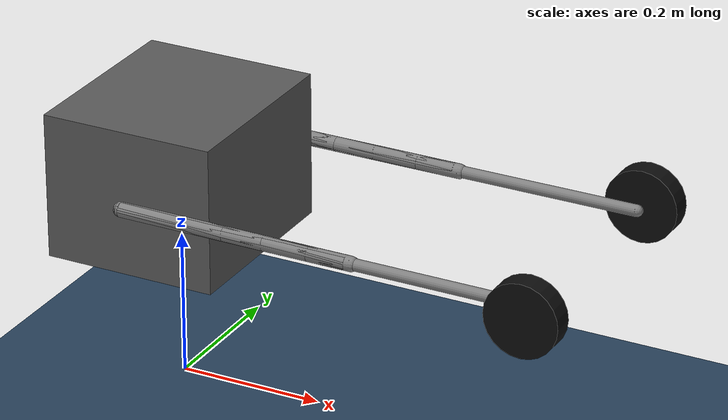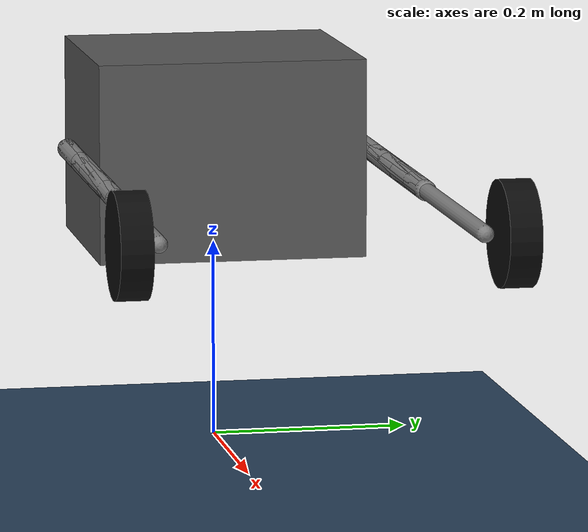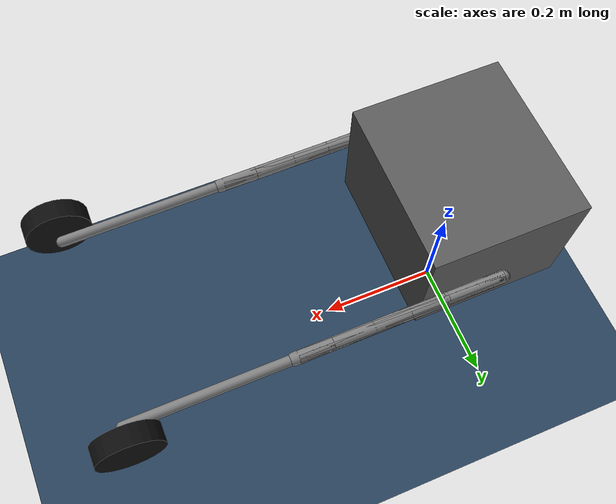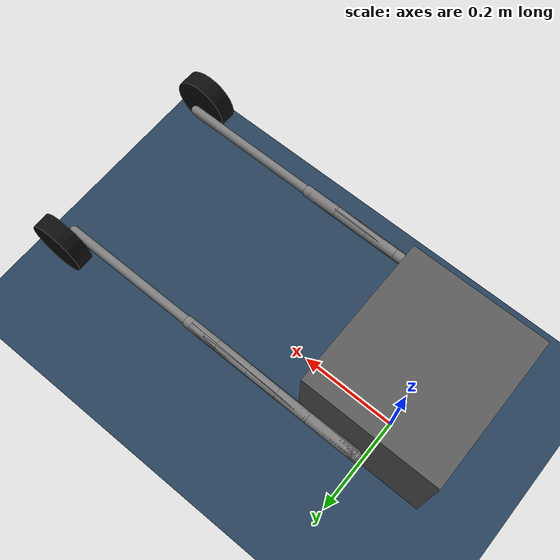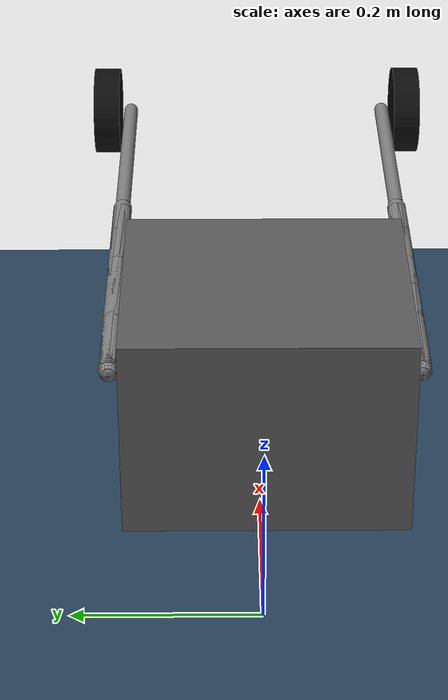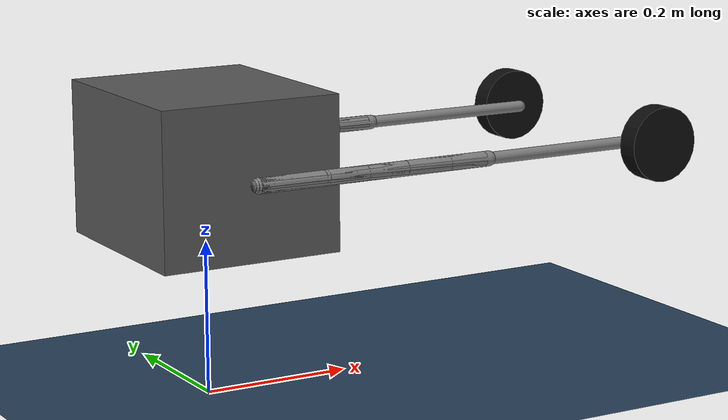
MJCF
<mujoco model="closed_chain_vertical_free">

    <compiler angle="radian" coordinate="local"/>
    <option timestep="0.001" gravity="0 0 -9.81" iterations="50"/>

    <visual>
        <map force="0.1" zfar="30"/>
        <rgba haze="0.15 0.25 0.35 1"/>
        <global offwidth="2560" offheight="1440" elevation="-20" azimuth="120"/>
    </visual>

    <asset>
        <texture type="skybox" builtin="gradient" rgb1=".3 .5 .7" rgb2="0 0 0" width="32" height="512"/>
        <texture name="grid" type="2d" builtin="checker" width="512" height="512" rgb1=".1 .2 .3" rgb2=".2 .3 .4"/>
        <material name="grid" texture="grid" texrepeat="1 1" texuniform="true" reflectance=".2"/>
    </asset>

    <size njmax="1000" nconmax="200"/>

    <!-- Link density is scaled so each complete five-bar leg is 0.47 kg. -->
    <default>
        <geom density="1488.66083872"/>
    </default>

    <worldbody>
        <geom name="floor" size="0 0 .05" type="plane" material="grid" condim="3"/>
        <!-- Debug stand: top surface z=0.20 supports the bottom of mount_plate. -->
        <light name="spotlight" mode="targetbody" target="A" diffuse=".8 .8 .8" specular="0.3 0.3 0.3" pos="0 -6 4" cutoff="30"/>
        <light name="top" pos="0 0 2" mode="trackcom"/>

        <!-- 平板：连接两个固定点 -->
        <body name="plate" pos="0 0 0.30">
            <freejoint name="root_free"/>
            <site name="imu_site" pos="0 0 0" size="0.006" rgba="0.1 0.8 0.2 1"/>
            <geom name="mount_plate" type="box" size="0.12 0.135 0.10" pos="0 0 0"
                  density="189.814814815" rgba="0.35 0.35 0.35 1"/>

            <!-- A 点固定在平板一侧，沿 Y 偏移避免干涉 -->
            <body name="A" pos="0 0.15 0">
            <camera name="main" pos="-0.6 0 0.3" xyaxes="0 -1 0 1 0 1" mode="trackcom"/>
            <geom type="sphere" size="0.01"/>
            <body name="motor_B_mass" pos="0 0 0">
                <inertial pos="0 0 0" mass="0.96" diaginertia="0.001 0.001 0.001"/>
            </body>
            <body name="motor_D_mass" pos="0 0 0">
                <inertial pos="0 0 0" mass="0.96" diaginertia="0.001 0.001 0.001"/>
            </body>

            <!-- B branch：绕 Y 轴转，在 XZ 竖直平面内运动 -->
            <body name="B" pos="0 0 0">
                <joint name="q_B" type="hinge" axis="0 1 0" damping="0.2" frictionloss="0.01"/>
                <geom type="capsule" fromto="0 0 0 0.0945 0 0" size="0.01"/>

                <body name="BC" pos="0.0945 0 0">
                    <joint name="q_BC" type="hinge" axis="0 1 0" damping="0.2" frictionloss="0.01"/>
                    <geom type="capsule" fromto="0 0 0 0.1125 0 0" size="0.01"/>

                    <body name="C" pos="0.1125 0 0">
                        <joint name="q_C" type="hinge" axis="0 1 0" damping="0.2" frictionloss="0.01"/>
                        <geom type="capsule" fromto="0 0 0 0.116 0 0" size="0.01"/>
                        <site name="C_site" pos="0.116 0 0"/>
                    </body>
                </body>
            </body>

            <!-- D branch：绕 Y 轴转，在 XZ 竖直平面内运动 -->
            <body name="D" pos="0 0 0">
                <joint name="q_D" type="hinge" axis="0 1 0" damping="0.2" frictionloss="0.01"/>
                <geom type="capsule" fromto="0 0 0 0.090 0 0" size="0.01"/>
                <site name="D_site" pos="0.090 0 0"/>

                <geom type="capsule" fromto="0 0 0 0.210 0 0" size="0.006"/>
                <site name="G_site" pos="0.210 0 0"/>

                <body name="DE" pos="0.090 0 0">
                    <joint name="q_DE" type="hinge" axis="0 1 0" damping="0.2" frictionloss="0.01"/>
                    <geom type="capsule" fromto="0 0 0 0.060 0 0" size="0.01"/>
                    <site name="E_site" pos="0.060 0 0"/>

                    <body name="E" pos="0.060 0 0">
                        <joint name="q_E" type="hinge" axis="0 1 0" damping="0.2" frictionloss="0.01"/>
                        <geom type="capsule" fromto="0 0 0 0.120 0 0" size="0.01"/>
                        <site name="F_site" pos="0.120 0 0"/>

                        <body name="F" pos="0.120 0 0">
                            <joint name="q_F" type="hinge" axis="0 1 0" damping="0.2" frictionloss="0.01"/>
                            <geom type="capsule" fromto="0 0 0 0.060 0 0" size="0.01"/>

                            <body name="G_loop" pos="0.060 0 0">
                                <site name="G_loop_site" pos="0 0 0"/>
                                <geom type="capsule" fromto="0 0 0 0.250 0 0" size="0.008"/>
                                <site name="H_site" pos="0.250 0 0"/>
                                <body name="H_wheel_body" pos="0.250 0.027 0">
                                    <joint name="q_H_wheel" type="hinge" axis="0 1 0"
                                           damping="0.002" frictionloss="0.0001"/>
                                    <inertial pos="0 0 0" mass="0.47"
                                              diaginertia="0.000329 0.0005875 0.000329"/>
                                    <geom name="H_wheel" type="cylinder" fromto="0 -0.015 0 0 0.015 0"
                                          size="0.05" density="0" rgba="0.05 0.05 0.05 1"
                                          condim="6" friction="1.2 0.005 0.0001"/>
                                </body>
                            </body>
                        </body>
                    </body>
                </body>
            </body>

            </body>

            <!-- A2 点固定在平板另一侧，沿 Y 偏移避免干涉 -->
            <body name="A_2" pos="0 -0.15 0">
            <geom type="sphere" size="0.01"/>
            <body name="motor_B_mass_2" pos="0 0 0">
                <inertial pos="0 0 0" mass="0.96" diaginertia="0.001 0.001 0.001"/>
            </body>
            <body name="motor_D_mass_2" pos="0 0 0">
                <inertial pos="0 0 0" mass="0.96" diaginertia="0.001 0.001 0.001"/>
            </body>

            <!-- B branch：绕 Y 轴转，在 XZ 竖直平面内运动 -->
            <body name="B_2" pos="0 0 0">
                <joint name="q_B_2" type="hinge" axis="0 -1 0" damping="0.2" frictionloss="0.01"/>
                <geom type="capsule" fromto="0 0 0 0.0945 0 0" size="0.01"/>

                <body name="BC_2" pos="0.0945 0 0">
                    <joint name="q_BC_2" type="hinge" axis="0 -1 0" damping="0.2" frictionloss="0.01"/>
                    <geom type="capsule" fromto="0 0 0 0.1125 0 0" size="0.01"/>

                    <body name="C_2" pos="0.1125 0 0">
                        <joint name="q_C_2" type="hinge" axis="0 -1 0" damping="0.2" frictionloss="0.01"/>
                        <geom type="capsule" fromto="0 0 0 0.116 0 0" size="0.01"/>
                        <site name="C_site_2" pos="0.116 0 0"/>
                    </body>
                </body>
            </body>

            <!-- D branch：绕 Y 轴转，在 XZ 竖直平面内运动 -->
            <body name="D_2" pos="0 0 0">
                <joint name="q_D_2" type="hinge" axis="0 -1 0" damping="0.2" frictionloss="0.01"/>
                <geom type="capsule" fromto="0 0 0 0.090 0 0" size="0.01"/>
                <site name="D_site_2" pos="0.090 0 0"/>

                <geom type="capsule" fromto="0 0 0 0.210 0 0" size="0.006"/>
                <site name="G_site_2" pos="0.210 0 0"/>

                <body name="DE_2" pos="0.090 0 0">
                    <joint name="q_DE_2" type="hinge" axis="0 -1 0" damping="0.2" frictionloss="0.01"/>
                    <geom type="capsule" fromto="0 0 0 0.060 0 0" size="0.01"/>
                    <site name="E_site_2" pos="0.060 0 0"/>

                    <body name="E_2" pos="0.060 0 0">
                        <joint name="q_E_2" type="hinge" axis="0 -1 0" damping="0.2" frictionloss="0.01"/>
                        <geom type="capsule" fromto="0 0 0 0.120 0 0" size="0.01"/>
                        <site name="F_site_2" pos="0.120 0 0"/>

                        <body name="F_2" pos="0.120 0 0">
                            <joint name="q_F_2" type="hinge" axis="0 -1 0" damping="0.2" frictionloss="0.01"/>
                            <geom type="capsule" fromto="0 0 0 0.060 0 0" size="0.01"/>

                            <body name="G_loop_2" pos="0.060 0 0">
                                <site name="G_loop_site_2" pos="0 0 0"/>
                                <geom type="capsule" fromto="0 0 0 0.250 0 0" size="0.008"/>
                                <site name="H_site_2" pos="0.250 0 0"/>
                                <body name="H_wheel_body_2" pos="0.250 -0.027 0">
                                    <joint name="q_H_wheel_2" type="hinge" axis="0 -1 0"
                                           damping="0.002" frictionloss="0.0001"/>
                                    <inertial pos="0 0 0" mass="0.47"
                                              diaginertia="0.000329 0.0005875 0.000329"/>
                                    <geom name="H_wheel_2" type="cylinder" fromto="0 -0.015 0 0 0.015 0"
                                          size="0.05" density="0" rgba="0.05 0.05 0.05 1"
                                          condim="6" friction="1.2 0.005 0.0001"/>
                                </body>
                            </body>
                        </body>
                    </body>
                </body>
            </body>

            </body>

        </body>

    </worldbody>

    <!-- The planar linkage members occupy the same visual layer. Their internal
         intersections are mechanical clearances, not physical contacts. -->
    <contact>
        <!-- For condim=6 the first two coefficients are the two sliding
             tangents; torsional and rolling friction follow them. -->
        <pair name="wheel_floor_1" geom1="floor" geom2="H_wheel" condim="6"
              friction="0.2 1.2 0.005 0.0001 0.0001"/>
        <pair name="wheel_floor_2" geom1="floor" geom2="H_wheel_2" condim="6"
              friction="0.2 1.2 0.005 0.0001 0.0001"/>
        <exclude body1="B" body2="D"/>
        <exclude body1="C" body2="D"/>
        <exclude body1="C" body2="DE"/>
        <exclude body1="D" body2="F"/>
        <exclude body1="D" body2="G_loop"/>
        <exclude body1="B_2" body2="D_2"/>
        <exclude body1="C_2" body2="D_2"/>
        <exclude body1="C_2" body2="DE_2"/>
        <exclude body1="D_2" body2="F_2"/>
        <exclude body1="D_2" body2="G_loop_2"/>
    </contact>

    <tendon>
        <fixed name="t_de_abs">
            <joint joint="q_D" coef="1"/>
            <joint joint="q_DE" coef="1"/>
        </fixed>
        <fixed name="t_dc_abs">
            <joint joint="q_B" coef="1"/>
            <joint joint="q_BC" coef="1"/>
            <joint joint="q_C" coef="1"/>
        </fixed>
        <fixed name="t_de_abs_2">
            <joint joint="q_D_2" coef="1"/>
            <joint joint="q_DE_2" coef="1"/>
        </fixed>
        <fixed name="t_dc_abs_2">
            <joint joint="q_B_2" coef="1"/>
            <joint joint="q_BC_2" coef="1"/>
            <joint joint="q_C_2" coef="1"/>
        </fixed>
    </tendon>

    <actuator>
        <motor name="act_q_B" joint="q_B" gear="1" ctrlrange="-20 20"/>
        <motor name="act_q_D" joint="q_D" gear="1" ctrlrange="-20 20"/>
        <motor name="act_q_B_2" joint="q_B_2" gear="1" ctrlrange="-20 20"/>
        <motor name="act_q_D_2" joint="q_D_2" gear="1" ctrlrange="-20 20"/>
        <motor name="act_H_wheel" joint="q_H_wheel" gear="1" ctrlrange="-5 5"/>
        <motor name="act_H_wheel_2" joint="q_H_wheel_2" gear="1" ctrlrange="-5 5"/>
    </actuator>

    <sensor>
        <gyro name="imu_gyro" site="imu_site"/>
        <accelerometer name="imu_accelerometer" site="imu_site"/>
        <framequat name="imu_quaternion" objtype="site" objname="imu_site"/>
        <jointvel name="wheel_speed_1" joint="q_H_wheel"/>
        <jointvel name="wheel_speed_2" joint="q_H_wheel_2"/>
        <jointpos name="angle_q_B" joint="q_B"/>
        <jointpos name="angle_q_D" joint="q_D"/>
        <jointpos name="angle_q_B_2" joint="q_B_2"/>
        <jointpos name="angle_q_D_2" joint="q_D_2"/>
    </sensor>

    <equality>
        <connect site1="C_site" site2="D_site" solref="0.002 1" solimp="0.9 0.95 0.001"/>
        <connect site1="G_loop_site" site2="G_site" solref="0.002 1" solimp="0.9 0.95 0.001"/>
        <tendon tendon1="t_de_abs" tendon2="t_dc_abs" solref="0.002 1" solimp="0.9 0.95 0.001"/>
        <joint joint1="q_E" joint2="q_F" polycoef="-3.141592653589793 -1 0 0 0" solref="0.002 1" solimp="0.9 0.95 0.001"/>
        <connect site1="C_site_2" site2="D_site_2" solref="0.002 1" solimp="0.9 0.95 0.001"/>
        <connect site1="G_loop_site_2" site2="G_site_2" solref="0.002 1" solimp="0.9 0.95 0.001"/>
        <tendon tendon1="t_de_abs_2" tendon2="t_dc_abs_2" solref="0.002 1" solimp="0.9 0.95 0.001"/>
        <joint joint1="q_E_2" joint2="q_F_2" polycoef="3.141592653589793 -1 0 0 0" solref="0.002 1" solimp="0.9 0.95 0.001"/>
    </equality>

    <keyframe>
        <!-- qpos order: q_B q_BC q_C q_D q_DE q_E q_F (radians) -->
        <!-- qpos order (free root + wheels): root_pos root_quat q_B q_BC q_C q_D q_DE q_E q_F q_H_wheel q_B_2 q_BC_2 q_C_2 q_D_2 q_DE_2 q_E_2 q_F_2 q_H_wheel_2 -->
        <!-- ctrl order: act_q_B act_q_D act_q_B_2 act_q_D_2 act_H_wheel act_H_wheel_2 -->
        <key name="init" qpos="0 0 0.30 1 0 0 0 0.43 2.083383236527022 1.416171967163293 2.88 1.049555203690315 -1.049555203690315 -2.092037449899478 0 -0.43 -2.083383236527022 -1.416171967163293 -2.88 -1.049555203690315 1.049555203690315 2.092037449899478 0"
             ctrl="0 0 0 0 0 0" />
    </keyframe>

</mujoco>
